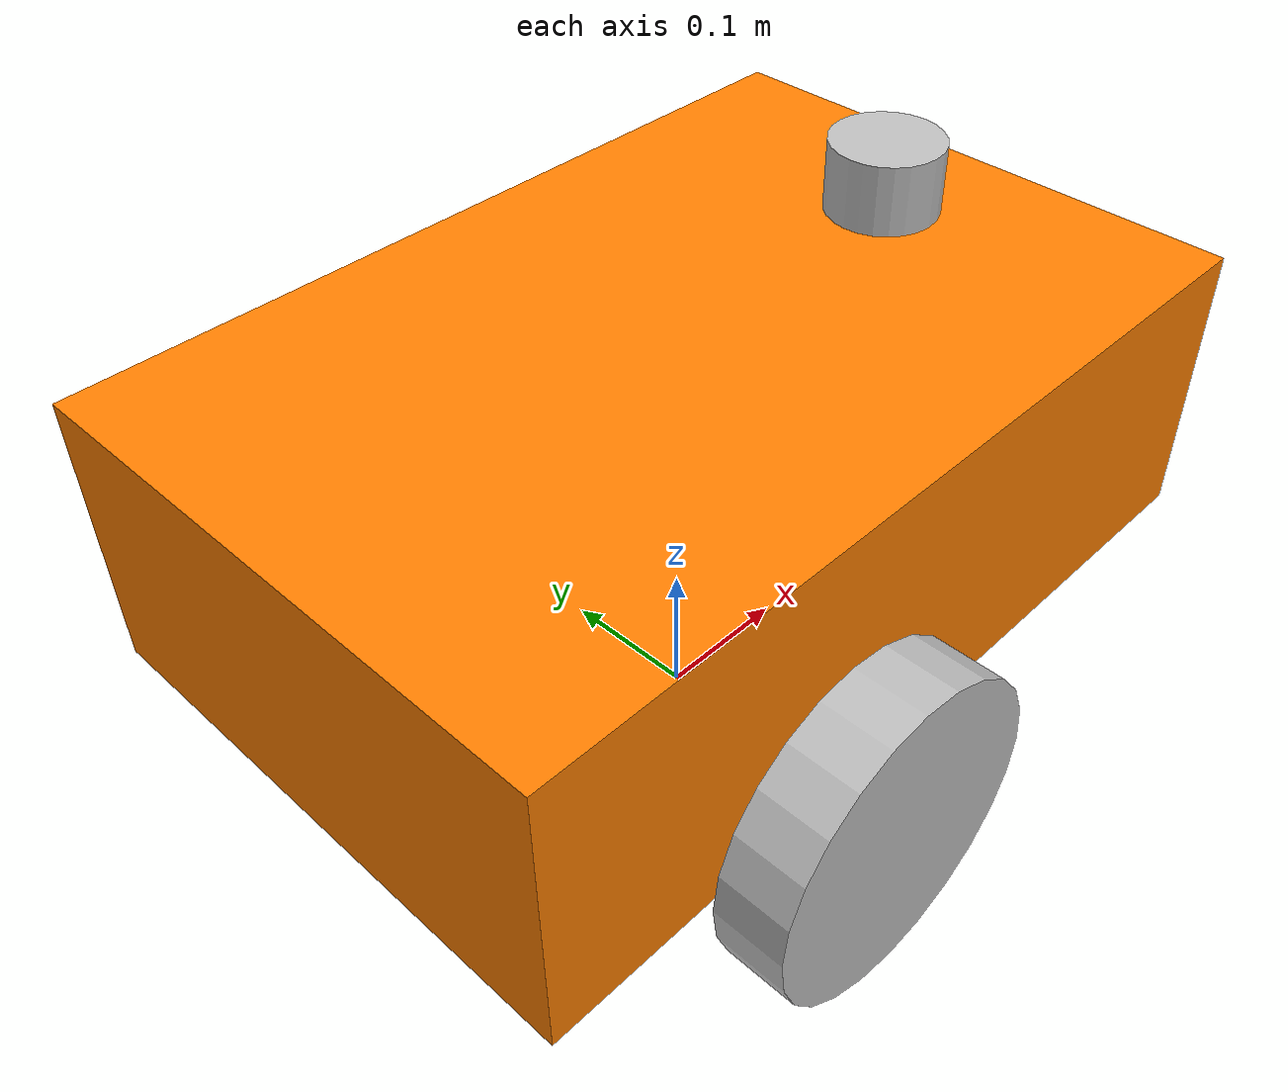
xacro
<?xml version="1.0"?>

<robot name="amr" xmlns:xacro="http://www.ros.org/wiki/xacro">

    <material name="orange">
        <color rgba="1 0.5 0 1"/>
    </material>
    <material name="black">
        <color rgba="0.75 0.75 0.75 1.0"/>
    </material>

    <link name="base_link">
       <visual>
            <origin xyz="0 0 0" rpy="0 0 0"/>
            <geometry>
                <box size="0.60 0.40 0.20"/>
            </geometry>
            <material name="orange"/>
        </visual>
        <collision>
            <origin xyz="0 0 -0.175" rpy="0 0 0"/>
            <geometry>
                <box size="0.60 0.40 0.05"/>
            </geometry>
        </collision>
        <collision>
            <origin xyz="0.20 0 -0.10" rpy="0 0 0"/>
            <geometry>
                <box size="0.20 0.40 0.20"/>
            </geometry>
        </collision>
        <collision>
            <origin xyz="-0.275 0 -0.10" rpy="0 0 0"/>
            <geometry>
                <box size="0.05 0.40 0.20"/>
            </geometry>
        </collision>
        <collision>
            <origin xyz="-0.075 0.175 -0.10" rpy="0 0 0"/>
            <geometry>
                <box size="0.35 0.05 0.20"/>
            </geometry>
        </collision>
        <collision>
            <origin xyz="-0.075 -0.175 -0.10" rpy="0 0 0"/>
            <geometry>
                <box size="0.35 0.05 0.20"/>
            </geometry>
        </collision>
        <inertial>
            <origin xyz="0 0 0" rpy="0 0 0"/>
            <mass value="10.0"/>
            <inertia
                ixx="0.1667"
                ixy="0.0"
                ixz="0.0"
                iyy="0.3333"
                iyz="0.0"
                izz="0.4333"/>
        </inertial>

    </link>

    <link name="base_footprint"/>
    <joint name="base_footprint_joint" type="fixed">
        <parent link="base_footprint"/>
        <child link="base_link"/>
        <origin xyz="0 0 0.21" rpy="0 0 0"/>
    </joint>

    <link name="left_wheel">
        <visual>
            <origin xyz="0 0 0" rpy="1.5708 0 0"/>
            <geometry>
                <cylinder radius="0.11" length="0.05"/>
            </geometry>
            <material name="black"/>
        </visual>
        <collision>
            <origin xyz="0 0 0" rpy="1.5708 0 0"/>
            <geometry>
                <cylinder radius="0.11" length="0.05"/>
            </geometry>
        </collision>
        <inertial>
            <mass value="1.0"/>
            <origin xyz="0 0 0" rpy="0 0 0"/>
            <inertia
                ixx="0.006"
                ixy="0.0"
                ixz="0.0"
                iyy="0.006"
                iyz="0.0"
                izz="0.006"/>
        </inertial>
    </link>
    <joint name="left_wheel_joint" type="continuous">
        <parent link="base_link"/>
        <child link="left_wheel"/>
        <origin xyz="-0.075 0.230 -0.10"
                rpy="0 0 0"/>
        <axis xyz="0 1 0"/>
    </joint>

    <link name="right_wheel">
        <visual>
            <origin xyz="0 0 0" rpy="1.5708 0 0"/>
            <geometry>
                <cylinder radius="0.11" length="0.05"/>
            </geometry>
            <material name="black"/>
        </visual>
        <collision>
            <origin xyz="0 0 0" rpy="1.5708 0 0"/>
            <geometry>
                <cylinder radius="0.11" length="0.05"/>
            </geometry>
        </collision>
        <inertial>
            <mass value="1.0"/>
            <origin xyz="0 0 0" rpy="0 0 0"/>
            <inertia
                ixx="0.006"
                ixy="0.0"
                ixz="0.0"
                iyy="0.006"
                iyz="0.0"
                izz="0.006"/>
        </inertial>
    </link>
    <joint name="right_wheel_joint" type="continuous">
        <parent link="base_link"/>
        <child link="right_wheel"/>
        <origin xyz="-0.075 -0.230 -0.10"
                rpy="0 0 0"/>
        <axis xyz="0 1 0"/>
    </joint>

    <link name="front_caster">
        <visual>
            <geometry>
                <sphere radius="0.055"/>
            </geometry>
            <material name="black"/>
        </visual>
        <collision>
            <geometry>
                <sphere radius="0.055"/>
            </geometry>
        </collision>
        <inertial>
            <mass value="0.5"/>
            <origin xyz="0 0 0" rpy="0 0 0"/>
            <inertia
                ixx="0.000605"
                ixy="0.0"
                ixz="0.0"
                iyy="0.000605"
                iyz="0.0"
                izz="0.000605"/>
        </inertial>
    </link>
    <joint name="front_caster_joint" type="fixed">
        <parent link="base_link"/>
        <child link="front_caster"/>
        <origin xyz="0.25 0 -0.155" rpy="0 0 0"/>
    </joint>

    <link name = "lidar_link">
        <visual>
            <geometry>
                <cylinder radius="0.04" length="0.05"/>
            </geometry>
            <material name="black"/>
            <origin xyz="0 0 -0.035" rpy="0 0 0"/>
        </visual>
    </link>
    <joint name="lidar_joint" type="fixed">
        <parent link="base_link"/>
        <child link="lidar_link"/>
        <origin xyz="0.20 0 0.16" rpy="0 0 0"/>
    </joint>

    <gazebo reference="lidar_link">
        <sensor name="lidar" type="ray">
            <pose>0 0 0 0 0 0</pose>
            <update_rate>10</update_rate>
            <ray>
                <scan>
                    <horizontal>
                        <samples>720</samples>
                        <resolution>1</resolution>
                        <min_angle>-3.14159265359</min_angle>
                        <max_angle>3.14159265359</max_angle>
                    </horizontal>
                </scan>
                <range>
                    <min>0.12</min>
                    <max>12.0</max>
                    <resolution>0.01</resolution>
                </range>
                <noise>
                    <type>gaussian</type>
                    <mean>0.0</mean>
                    <stddev>0.01</stddev>
                </noise>
            </ray>
            <plugin
                name="gazebo_ros_lidar"
                filename="libgazebo_ros_ray_sensor.so">
                <ros>
                    <remapping>~/out:=scan</remapping>
                </ros>
                <output_type>sensor_msgs/LaserScan</output_type>
                <frame_name>lidar_link</frame_name>
            </plugin>
        </sensor>
    </gazebo>
    <gazebo reference="base_link">
        <material>Gazebo/Orange</material>
    </gazebo>
    <gazebo reference="left_wheel">
        <material>Gazebo/Grey</material>
    </gazebo>
    <gazebo reference="right_wheel">
        <material>Gazebo/Grey</material>
    </gazebo>
    <gazebo reference="lidar_link">
        <material>Gazebo/Black</material>
    </gazebo>

    <ros2_control name="GazeboSystem" type="system">

        <hardware>
            <plugin>gazebo_ros2_control/GazeboSystem</plugin>
        </hardware>

        <!-- Left drive wheel -->
        <joint name="left_wheel_joint">

            <command_interface name="velocity"/>

            <state_interface name="position"/>
            <state_interface name="velocity"/>

        </joint>

        <!-- Right drive wheel -->
        <joint name="right_wheel_joint">

            <command_interface name="velocity"/>

            <state_interface name="position"/>
            <state_interface name="velocity"/>

        </joint>

    </ros2_control>

    <gazebo>

        <plugin
            filename="libgazebo_ros2_control.so"
            name="gazebo_ros2_control">

            <parameters>
                $(find amr_description)/config/controllers.yaml
            </parameters>

        </plugin>

    </gazebo>

    <gazebo reference="front_caster">
        <material>Gazebo/Grey</material>

        <collision>
            <surface>
                <friction>
                    <ode>
                        <mu>0.0</mu>
                        <mu2>0.0</mu2>
                    </ode>
                </friction>
            </surface>
        </collision>
    </gazebo>
</robot>
